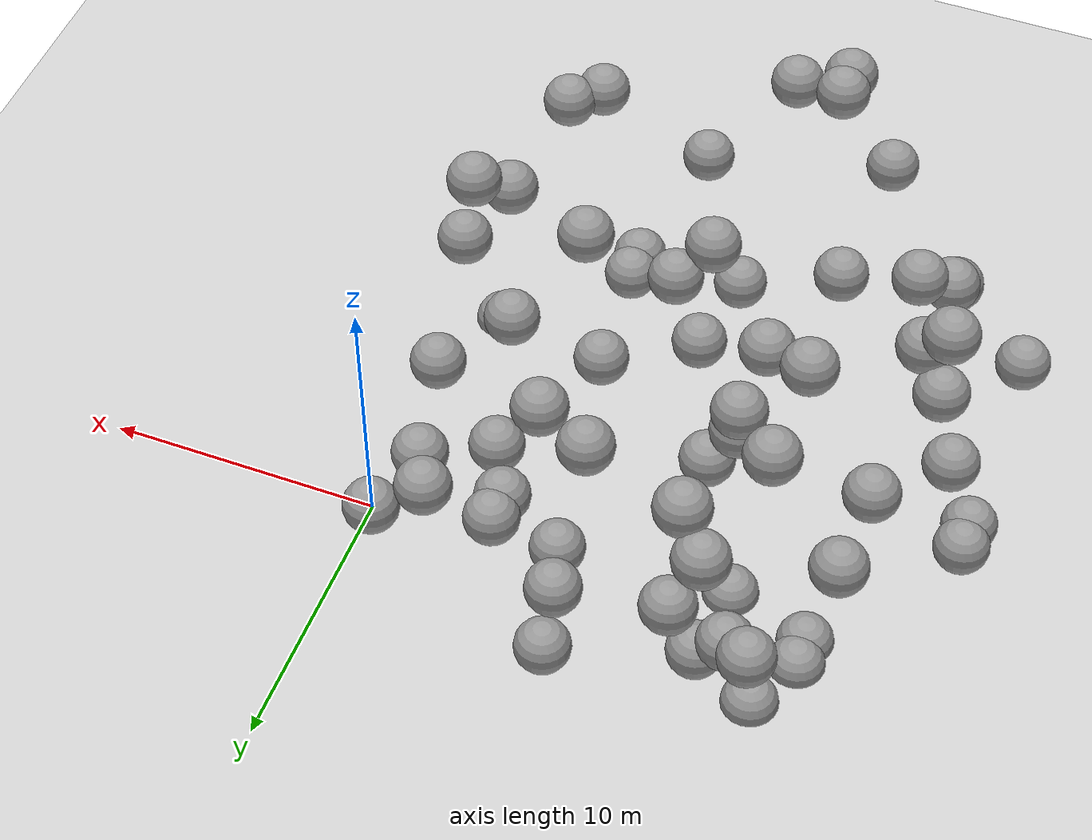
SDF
<sdf version="1.7">
 <world name="default">
  <model name="ground_plane">
   <static>1</static>
   <link name="link">
    <collision name="collision">
     <geometry><plane><normal>0 0 1</normal><size>100 100</size></plane></geometry>
     <surface>
      <contact><collide_bitmask>65535</collide_bitmask></contact>
      <friction><ode><mu>100</mu><mu2>50</mu2></ode></friction>
     </surface>
    </collision>
    <visual name="visual">
     <cast_shadows>0</cast_shadows>
     <geometry><plane><normal>0 0 1</normal><size>100 100</size></plane></geometry>
     <material>
      <script><uri>file://media/materials/scripts/gazebo.material</uri><name>Gazebo/Grey</name></script>
     </material>
    </visual>
   </link>
  </model>
  <model name="sphere_3">
   <static>1</static>
   <pose>-8 4 1 0 0 0</pose>
   <link name="link">
    <inertial>
     <mass>418.87902047863906</mass>
     <inertia>
      <ixx>167.55160819145564</ixx>
      <iyy>167.55160819145564</iyy>
      <izz>167.55160819145564</izz>
      <ixy>0</ixy>
      <ixz>0</ixz>
      <iyz>0</iyz>
     </inertia>
    </inertial>
    <collision name="collision"><geometry><sphere><radius>1.0</radius></sphere></geometry></collision>
    <visual name="visual">
     <geometry><sphere><radius>1.0</radius></sphere></geometry>
     <material>
      <script><uri>file://media/materials/scripts/gazebo.material</uri><name>Gazebo/Grey</name></script>
     </material>
    </visual>
   </link>
  </model>
  <model name="sphere_8">
   <static>1</static>
   <pose>-5 0 3 0 0 0</pose>
   <link name="link">
    <inertial>
     <mass>418.87902047863906</mass>
     <inertia>
      <ixx>167.55160819145564</ixx>
      <iyy>167.55160819145564</iyy>
      <izz>167.55160819145564</izz>
      <ixy>0</ixy>
      <ixz>0</ixz>
      <iyz>0</iyz>
     </inertia>
    </inertial>
    <collision name="collision"><geometry><sphere><radius>1.0</radius></sphere></geometry></collision>
    <visual name="visual">
     <geometry><sphere><radius>1.0</radius></sphere></geometry>
     <material>
      <script><uri>file://media/materials/scripts/gazebo.material</uri><name>Gazebo/Grey</name></script>
     </material>
    </visual>
   </link>
  </model>
  <model name="sphere_19">
   <static>1</static>
   <pose>-4 -2 3 0 0 0</pose>
   <link name="link">
    <inertial>
     <mass>418.87902047863906</mass>
     <inertia>
      <ixx>167.55160819145564</ixx>
      <iyy>167.55160819145564</iyy>
      <izz>167.55160819145564</izz>
      <ixy>0</ixy>
      <ixz>0</ixz>
      <iyz>0</iyz>
     </inertia>
    </inertial>
    <collision name="collision"><geometry><sphere><radius>1.0</radius></sphere></geometry></collision>
    <visual name="visual">
     <geometry><sphere><radius>1.0</radius></sphere></geometry>
     <material>
      <script><uri>file://media/materials/scripts/gazebo.material</uri><name>Gazebo/Grey</name></script>
     </material>
    </visual>
   </link>
  </model>
  <model name="sphere_20">
   <static>1</static>
   <pose>-8 -9 6 0 0 0</pose>
   <link name="link">
    <inertial>
     <mass>418.87902047863906</mass>
     <inertia>
      <ixx>167.55160819145564</ixx>
      <iyy>167.55160819145564</iyy>
      <izz>167.55160819145564</izz>
      <ixy>0</ixy>
      <ixz>0</ixz>
      <iyz>0</iyz>
     </inertia>
    </inertial>
    <collision name="collision"><geometry><sphere><radius>1.0</radius></sphere></geometry></collision>
    <visual name="visual">
     <geometry><sphere><radius>1.0</radius></sphere></geometry>
     <material>
      <script><uri>file://media/materials/scripts/gazebo.material</uri><name>Gazebo/Grey</name></script>
     </material>
    </visual>
   </link>
  </model>
  <model name="sphere_24">
   <static>1</static>
   <pose>-20 -5 1 0 0 0</pose>
   <link name="link">
    <inertial>
     <mass>418.87902047863906</mass>
     <inertia>
      <ixx>167.55160819145564</ixx>
      <iyy>167.55160819145564</iyy>
      <izz>167.55160819145564</izz>
      <ixy>0</ixy>
      <ixz>0</ixz>
      <iyz>0</iyz>
     </inertia>
    </inertial>
    <collision name="collision"><geometry><sphere><radius>1.0</radius></sphere></geometry></collision>
    <visual name="visual">
     <geometry><sphere><radius>1.0</radius></sphere></geometry>
     <material>
      <script><uri>file://media/materials/scripts/gazebo.material</uri><name>Gazebo/Grey</name></script>
     </material>
    </visual>
   </link>
  </model>
  <model name="sphere_26">
   <static>1</static>
   <pose>-2 -18 5 0 0 0</pose>
   <link name="link">
    <inertial>
     <mass>418.87902047863906</mass>
     <inertia>
      <ixx>167.55160819145564</ixx>
      <iyy>167.55160819145564</iyy>
      <izz>167.55160819145564</izz>
      <ixy>0</ixy>
      <ixz>0</ixz>
      <iyz>0</iyz>
     </inertia>
    </inertial>
    <collision name="collision"><geometry><sphere><radius>1.0</radius></sphere></geometry></collision>
    <visual name="visual">
     <geometry><sphere><radius>1.0</radius></sphere></geometry>
     <material>
      <script><uri>file://media/materials/scripts/gazebo.material</uri><name>Gazebo/Grey</name></script>
     </material>
    </visual>
   </link>
  </model>
  <model name="sphere_29">
   <static>1</static>
   <pose>-18 -8 5 0 0 0</pose>
   <link name="link">
    <inertial>
     <mass>418.87902047863906</mass>
     <inertia>
      <ixx>167.55160819145564</ixx>
      <iyy>167.55160819145564</iyy>
      <izz>167.55160819145564</izz>
      <ixy>0</ixy>
      <ixz>0</ixz>
      <iyz>0</iyz>
     </inertia>
    </inertial>
    <collision name="collision"><geometry><sphere><radius>1.0</radius></sphere></geometry></collision>
    <visual name="visual">
     <geometry><sphere><radius>1.0</radius></sphere></geometry>
     <material>
      <script><uri>file://media/materials/scripts/gazebo.material</uri><name>Gazebo/Grey</name></script>
     </material>
    </visual>
   </link>
  </model>
  <model name="sphere_35">
   <static>1</static>
   <pose>-11 -20 7 0 0 0</pose>
   <link name="link">
    <inertial>
     <mass>418.87902047863906</mass>
     <inertia>
      <ixx>167.55160819145564</ixx>
      <iyy>167.55160819145564</iyy>
      <izz>167.55160819145564</izz>
      <ixy>0</ixy>
      <ixz>0</ixz>
      <iyz>0</iyz>
     </inertia>
    </inertial>
    <collision name="collision"><geometry><sphere><radius>1.0</radius></sphere></geometry></collision>
    <visual name="visual">
     <geometry><sphere><radius>1.0</radius></sphere></geometry>
     <material>
      <script><uri>file://media/materials/scripts/gazebo.material</uri><name>Gazebo/Grey</name></script>
     </material>
    </visual>
   </link>
  </model>
  <model name="sphere_36">
   <static>1</static>
   <pose>-1 -11 6 0 0 0</pose>
   <link name="link">
    <inertial>
     <mass>418.87902047863906</mass>
     <inertia>
      <ixx>167.55160819145564</ixx>
      <iyy>167.55160819145564</iyy>
      <izz>167.55160819145564</izz>
      <ixy>0</ixy>
      <ixz>0</ixz>
      <iyz>0</iyz>
     </inertia>
    </inertial>
    <collision name="collision"><geometry><sphere><radius>1.0</radius></sphere></geometry></collision>
    <visual name="visual">
     <geometry><sphere><radius>1.0</radius></sphere></geometry>
     <material>
      <script><uri>file://media/materials/scripts/gazebo.material</uri><name>Gazebo/Grey</name></script>
     </material>
    </visual>
   </link>
  </model>
  <model name="sphere_38">
   <static>1</static>
   <pose>-8 0 7 0 0 0</pose>
   <link name="link">
    <inertial>
     <mass>418.87902047863906</mass>
     <inertia>
      <ixx>167.55160819145564</ixx>
      <iyy>167.55160819145564</iyy>
      <izz>167.55160819145564</izz>
      <ixy>0</ixy>
      <ixz>0</ixz>
      <iyz>0</iyz>
     </inertia>
    </inertial>
    <collision name="collision"><geometry><sphere><radius>1.0</radius></sphere></geometry></collision>
    <visual name="visual">
     <geometry><sphere><radius>1.0</radius></sphere></geometry>
     <material>
      <script><uri>file://media/materials/scripts/gazebo.material</uri><name>Gazebo/Grey</name></script>
     </material>
    </visual>
   </link>
  </model>
  <model name="sphere_45">
   <static>1</static>
   <pose>-14 -5 8 0 0 0</pose>
   <link name="link">
    <inertial>
     <mass>418.87902047863906</mass>
     <inertia>
      <ixx>167.55160819145564</ixx>
      <iyy>167.55160819145564</iyy>
      <izz>167.55160819145564</izz>
      <ixy>0</ixy>
      <ixz>0</ixz>
      <iyz>0</iyz>
     </inertia>
    </inertial>
    <collision name="collision"><geometry><sphere><radius>1.0</radius></sphere></geometry></collision>
    <visual name="visual">
     <geometry><sphere><radius>1.0</radius></sphere></geometry>
     <material>
      <script><uri>file://media/materials/scripts/gazebo.material</uri><name>Gazebo/Grey</name></script>
     </material>
    </visual>
   </link>
  </model>
  <model name="sphere_50">
   <static>1</static>
   <pose>-19 -6 4 0 0 0</pose>
   <link name="link">
    <inertial>
     <mass>418.87902047863906</mass>
     <inertia>
      <ixx>167.55160819145564</ixx>
      <iyy>167.55160819145564</iyy>
      <izz>167.55160819145564</izz>
      <ixy>0</ixy>
      <ixz>0</ixz>
      <iyz>0</iyz>
     </inertia>
    </inertial>
    <collision name="collision"><geometry><sphere><radius>1.0</radius></sphere></geometry></collision>
    <visual name="visual">
     <geometry><sphere><radius>1.0</radius></sphere></geometry>
     <material>
      <script><uri>file://media/materials/scripts/gazebo.material</uri><name>Gazebo/Grey</name></script>
     </material>
    </visual>
   </link>
  </model>
  <model name="sphere_56">
   <static>1</static>
   <pose>-16 -12 6 0 0 0</pose>
   <link name="link">
    <inertial>
     <mass>418.87902047863906</mass>
     <inertia>
      <ixx>167.55160819145564</ixx>
      <iyy>167.55160819145564</iyy>
      <izz>167.55160819145564</izz>
      <ixy>0</ixy>
      <ixz>0</ixz>
      <iyz>0</iyz>
     </inertia>
    </inertial>
    <collision name="collision"><geometry><sphere><radius>1.0</radius></sphere></geometry></collision>
    <visual name="visual">
     <geometry><sphere><radius>1.0</radius></sphere></geometry>
     <material>
      <script><uri>file://media/materials/scripts/gazebo.material</uri><name>Gazebo/Grey</name></script>
     </material>
    </visual>
   </link>
  </model>
  <model name="sphere_57">
   <static>1</static>
   <pose>-1 -10 0 0 0 0</pose>
   <link name="link">
    <inertial>
     <mass>418.87902047863906</mass>
     <inertia>
      <ixx>167.55160819145564</ixx>
      <iyy>167.55160819145564</iyy>
      <izz>167.55160819145564</izz>
      <ixy>0</ixy>
      <ixz>0</ixz>
      <iyz>0</iyz>
     </inertia>
    </inertial>
    <collision name="collision"><geometry><sphere><radius>1.0</radius></sphere></geometry></collision>
    <visual name="visual">
     <geometry><sphere><radius>1.0</radius></sphere></geometry>
     <material>
      <script><uri>file://media/materials/scripts/gazebo.material</uri><name>Gazebo/Grey</name></script>
     </material>
    </visual>
   </link>
  </model>
  <model name="sphere_58">
   <static>1</static>
   <pose>-13 3 2 0 0 0</pose>
   <link name="link">
    <inertial>
     <mass>418.87902047863906</mass>
     <inertia>
      <ixx>167.55160819145564</ixx>
      <iyy>167.55160819145564</iyy>
      <izz>167.55160819145564</izz>
      <ixy>0</ixy>
      <ixz>0</ixz>
      <iyz>0</iyz>
     </inertia>
    </inertial>
    <collision name="collision"><geometry><sphere><radius>1.0</radius></sphere></geometry></collision>
    <visual name="visual">
     <geometry><sphere><radius>1.0</radius></sphere></geometry>
     <material>
      <script><uri>file://media/materials/scripts/gazebo.material</uri><name>Gazebo/Grey</name></script>
     </material>
    </visual>
   </link>
  </model>
  <model name="sphere_60">
   <static>1</static>
   <pose>-14 3 3 0 0 0</pose>
   <link name="link">
    <inertial>
     <mass>418.87902047863906</mass>
     <inertia>
      <ixx>167.55160819145564</ixx>
      <iyy>167.55160819145564</iyy>
      <izz>167.55160819145564</izz>
      <ixy>0</ixy>
      <ixz>0</ixz>
      <iyz>0</iyz>
     </inertia>
    </inertial>
    <collision name="collision"><geometry><sphere><radius>1.0</radius></sphere></geometry></collision>
    <visual name="visual">
     <geometry><sphere><radius>1.0</radius></sphere></geometry>
     <material>
      <script><uri>file://media/materials/scripts/gazebo.material</uri><name>Gazebo/Grey</name></script>
     </material>
    </visual>
   </link>
  </model>
  <model name="sphere_61">
   <static>1</static>
   <pose>-13 -1 0 0 0 0</pose>
   <link name="link">
    <inertial>
     <mass>418.87902047863906</mass>
     <inertia>
      <ixx>167.55160819145564</ixx>
      <iyy>167.55160819145564</iyy>
      <izz>167.55160819145564</izz>
      <ixy>0</ixy>
      <ixz>0</ixz>
      <iyz>0</iyz>
     </inertia>
    </inertial>
    <collision name="collision"><geometry><sphere><radius>1.0</radius></sphere></geometry></collision>
    <visual name="visual">
     <geometry><sphere><radius>1.0</radius></sphere></geometry>
     <material>
      <script><uri>file://media/materials/scripts/gazebo.material</uri><name>Gazebo/Grey</name></script>
     </material>
    </visual>
   </link>
  </model>
  <model name="sphere_65">
   <static>1</static>
   <pose>-3 -6 5 0 0 0</pose>
   <link name="link">
    <inertial>
     <mass>418.87902047863906</mass>
     <inertia>
      <ixx>167.55160819145564</ixx>
      <iyy>167.55160819145564</iyy>
      <izz>167.55160819145564</izz>
      <ixy>0</ixy>
      <ixz>0</ixz>
      <iyz>0</iyz>
     </inertia>
    </inertial>
    <collision name="collision"><geometry><sphere><radius>1.0</radius></sphere></geometry></collision>
    <visual name="visual">
     <geometry><sphere><radius>1.0</radius></sphere></geometry>
     <material>
      <script><uri>file://media/materials/scripts/gazebo.material</uri><name>Gazebo/Grey</name></script>
     </material>
    </visual>
   </link>
  </model>
  <model name="sphere_71">
   <static>1</static>
   <pose>-9 -20 6 0 0 0</pose>
   <link name="link">
    <inertial>
     <mass>418.87902047863906</mass>
     <inertia>
      <ixx>167.55160819145564</ixx>
      <iyy>167.55160819145564</iyy>
      <izz>167.55160819145564</izz>
      <ixy>0</ixy>
      <ixz>0</ixz>
      <iyz>0</iyz>
     </inertia>
    </inertial>
    <collision name="collision"><geometry><sphere><radius>1.0</radius></sphere></geometry></collision>
    <visual name="visual">
     <geometry><sphere><radius>1.0</radius></sphere></geometry>
     <material>
      <script><uri>file://media/materials/scripts/gazebo.material</uri><name>Gazebo/Grey</name></script>
     </material>
    </visual>
   </link>
  </model>
  <model name="sphere_73">
   <static>1</static>
   <pose>-1 -17 5 0 0 0</pose>
   <link name="link">
    <inertial>
     <mass>418.87902047863906</mass>
     <inertia>
      <ixx>167.55160819145564</ixx>
      <iyy>167.55160819145564</iyy>
      <izz>167.55160819145564</izz>
      <ixy>0</ixy>
      <ixz>0</ixz>
      <iyz>0</iyz>
     </inertia>
    </inertial>
    <collision name="collision"><geometry><sphere><radius>1.0</radius></sphere></geometry></collision>
    <visual name="visual">
     <geometry><sphere><radius>1.0</radius></sphere></geometry>
     <material>
      <script><uri>file://media/materials/scripts/gazebo.material</uri><name>Gazebo/Grey</name></script>
     </material>
    </visual>
   </link>
  </model>
  <model name="sphere_76">
   <static>1</static>
   <pose>-8 3 3 0 0 0</pose>
   <link name="link">
    <inertial>
     <mass>418.87902047863906</mass>
     <inertia>
      <ixx>167.55160819145564</ixx>
      <iyy>167.55160819145564</iyy>
      <izz>167.55160819145564</izz>
      <ixy>0</ixy>
      <ixz>0</ixz>
      <iyz>0</iyz>
     </inertia>
    </inertial>
    <collision name="collision"><geometry><sphere><radius>1.0</radius></sphere></geometry></collision>
    <visual name="visual">
     <geometry><sphere><radius>1.0</radius></sphere></geometry>
     <material>
      <script><uri>file://media/materials/scripts/gazebo.material</uri><name>Gazebo/Grey</name></script>
     </material>
    </visual>
   </link>
  </model>
  <model name="sphere_84">
   <static>1</static>
   <pose>-12 2 8 0 0 0</pose>
   <link name="link">
    <inertial>
     <mass>418.87902047863906</mass>
     <inertia>
      <ixx>167.55160819145564</ixx>
      <iyy>167.55160819145564</iyy>
      <izz>167.55160819145564</izz>
      <ixy>0</ixy>
      <ixz>0</ixz>
      <iyz>0</iyz>
     </inertia>
    </inertial>
    <collision name="collision"><geometry><sphere><radius>1.0</radius></sphere></geometry></collision>
    <visual name="visual">
     <geometry><sphere><radius>1.0</radius></sphere></geometry>
     <material>
      <script><uri>file://media/materials/scripts/gazebo.material</uri><name>Gazebo/Grey</name></script>
     </material>
    </visual>
   </link>
  </model>
  <model name="sphere_85">
   <static>1</static>
   <pose>-5 1 3 0 0 0</pose>
   <link name="link">
    <inertial>
     <mass>418.87902047863906</mass>
     <inertia>
      <ixx>167.55160819145564</ixx>
      <iyy>167.55160819145564</iyy>
      <izz>167.55160819145564</izz>
      <ixy>0</ixy>
      <ixz>0</ixz>
      <iyz>0</iyz>
     </inertia>
    </inertial>
    <collision name="collision"><geometry><sphere><radius>1.0</radius></sphere></geometry></collision>
    <visual name="visual">
     <geometry><sphere><radius>1.0</radius></sphere></geometry>
     <material>
      <script><uri>file://media/materials/scripts/gazebo.material</uri><name>Gazebo/Grey</name></script>
     </material>
    </visual>
   </link>
  </model>
  <model name="sphere_93">
   <static>1</static>
   <pose>-13 3 7 0 0 0</pose>
   <link name="link">
    <inertial>
     <mass>418.87902047863906</mass>
     <inertia>
      <ixx>167.55160819145564</ixx>
      <iyy>167.55160819145564</iyy>
      <izz>167.55160819145564</izz>
      <ixy>0</ixy>
      <ixz>0</ixz>
      <iyz>0</iyz>
     </inertia>
    </inertial>
    <collision name="collision"><geometry><sphere><radius>1.0</radius></sphere></geometry></collision>
    <visual name="visual">
     <geometry><sphere><radius>1.0</radius></sphere></geometry>
     <material>
      <script><uri>file://media/materials/scripts/gazebo.material</uri><name>Gazebo/Grey</name></script>
     </material>
    </visual>
   </link>
  </model>
  <model name="sphere_94">
   <static>1</static>
   <pose>-1 2 3 0 0 0</pose>
   <link name="link">
    <inertial>
     <mass>418.87902047863906</mass>
     <inertia>
      <ixx>167.55160819145564</ixx>
      <iyy>167.55160819145564</iyy>
      <izz>167.55160819145564</izz>
      <ixy>0</ixy>
      <ixz>0</ixz>
      <iyz>0</iyz>
     </inertia>
    </inertial>
    <collision name="collision"><geometry><sphere><radius>1.0</radius></sphere></geometry></collision>
    <visual name="visual">
     <geometry><sphere><radius>1.0</radius></sphere></geometry>
     <material>
      <script><uri>file://media/materials/scripts/gazebo.material</uri><name>Gazebo/Grey</name></script>
     </material>
    </visual>
   </link>
  </model>
  <model name="sphere_95">
   <static>1</static>
   <pose>-16 0 0 0 0 0</pose>
   <link name="link">
    <inertial>
     <mass>418.87902047863906</mass>
     <inertia>
      <ixx>167.55160819145564</ixx>
      <iyy>167.55160819145564</iyy>
      <izz>167.55160819145564</izz>
      <ixy>0</ixy>
      <ixz>0</ixz>
      <iyz>0</iyz>
     </inertia>
    </inertial>
    <collision name="collision"><geometry><sphere><radius>1.0</radius></sphere></geometry></collision>
    <visual name="visual">
     <geometry><sphere><radius>1.0</radius></sphere></geometry>
     <material>
      <script><uri>file://media/materials/scripts/gazebo.material</uri><name>Gazebo/Grey</name></script>
     </material>
    </visual>
   </link>
  </model>
  <model name="sphere_100">
   <static>1</static>
   <pose>-2 0 4 0 0 0</pose>
   <link name="link">
    <inertial>
     <mass>418.87902047863906</mass>
     <inertia>
      <ixx>167.55160819145564</ixx>
      <iyy>167.55160819145564</iyy>
      <izz>167.55160819145564</izz>
      <ixy>0</ixy>
      <ixz>0</ixz>
      <iyz>0</iyz>
     </inertia>
    </inertial>
    <collision name="collision"><geometry><sphere><radius>1.0</radius></sphere></geometry></collision>
    <visual name="visual">
     <geometry><sphere><radius>1.0</radius></sphere></geometry>
     <material>
      <script><uri>file://media/materials/scripts/gazebo.material</uri><name>Gazebo/Grey</name></script>
     </material>
    </visual>
   </link>
  </model>
  <model name="sphere_104">
   <static>1</static>
   <pose>-13 -20 3 0 0 0</pose>
   <link name="link">
    <inertial>
     <mass>418.87902047863906</mass>
     <inertia>
      <ixx>167.55160819145564</ixx>
      <iyy>167.55160819145564</iyy>
      <izz>167.55160819145564</izz>
      <ixy>0</ixy>
      <ixz>0</ixz>
      <iyz>0</iyz>
     </inertia>
    </inertial>
    <collision name="collision"><geometry><sphere><radius>1.0</radius></sphere></geometry></collision>
    <visual name="visual">
     <geometry><sphere><radius>1.0</radius></sphere></geometry>
     <material>
      <script><uri>file://media/materials/scripts/gazebo.material</uri><name>Gazebo/Grey</name></script>
     </material>
    </visual>
   </link>
  </model>
  <model name="sphere_106">
   <static>1</static>
   <pose>-17 1 6 0 0 0</pose>
   <link name="link">
    <inertial>
     <mass>418.87902047863906</mass>
     <inertia>
      <ixx>167.55160819145564</ixx>
      <iyy>167.55160819145564</iyy>
      <izz>167.55160819145564</izz>
      <ixy>0</ixy>
      <ixz>0</ixz>
      <iyz>0</iyz>
     </inertia>
    </inertial>
    <collision name="collision"><geometry><sphere><radius>1.0</radius></sphere></geometry></collision>
    <visual name="visual">
     <geometry><sphere><radius>1.0</radius></sphere></geometry>
     <material>
      <script><uri>file://media/materials/scripts/gazebo.material</uri><name>Gazebo/Grey</name></script>
     </material>
    </visual>
   </link>
  </model>
  <model name="sphere_111">
   <static>1</static>
   <pose>-1 -4 4 0 0 0</pose>
   <link name="link">
    <inertial>
     <mass>418.87902047863906</mass>
     <inertia>
      <ixx>167.55160819145564</ixx>
      <iyy>167.55160819145564</iyy>
      <izz>167.55160819145564</izz>
      <ixy>0</ixy>
      <ixz>0</ixz>
      <iyz>0</iyz>
     </inertia>
    </inertial>
    <collision name="collision"><geometry><sphere><radius>1.0</radius></sphere></geometry></collision>
    <visual name="visual">
     <geometry><sphere><radius>1.0</radius></sphere></geometry>
     <material>
      <script><uri>file://media/materials/scripts/gazebo.material</uri><name>Gazebo/Grey</name></script>
     </material>
    </visual>
   </link>
  </model>
  <model name="sphere_112">
   <static>1</static>
   <pose>-5 -14 1 0 0 0</pose>
   <link name="link">
    <inertial>
     <mass>418.87902047863906</mass>
     <inertia>
      <ixx>167.55160819145564</ixx>
      <iyy>167.55160819145564</iyy>
      <izz>167.55160819145564</izz>
      <ixy>0</ixy>
      <ixz>0</ixz>
      <iyz>0</iyz>
     </inertia>
    </inertial>
    <collision name="collision"><geometry><sphere><radius>1.0</radius></sphere></geometry></collision>
    <visual name="visual">
     <geometry><sphere><radius>1.0</radius></sphere></geometry>
     <material>
      <script><uri>file://media/materials/scripts/gazebo.material</uri><name>Gazebo/Grey</name></script>
     </material>
    </visual>
   </link>
  </model>
  <model name="sphere_114">
   <static>1</static>
   <pose>-15 4 4 0 0 0</pose>
   <link name="link">
    <inertial>
     <mass>418.87902047863906</mass>
     <inertia>
      <ixx>167.55160819145564</ixx>
      <iyy>167.55160819145564</iyy>
      <izz>167.55160819145564</izz>
      <ixy>0</ixy>
      <ixz>0</ixz>
      <iyz>0</iyz>
     </inertia>
    </inertial>
    <collision name="collision"><geometry><sphere><radius>1.0</radius></sphere></geometry></collision>
    <visual name="visual">
     <geometry><sphere><radius>1.0</radius></sphere></geometry>
     <material>
      <script><uri>file://media/materials/scripts/gazebo.material</uri><name>Gazebo/Grey</name></script>
     </material>
    </visual>
   </link>
  </model>
  <model name="sphere_118">
   <static>1</static>
   <pose>-6 -19 2 0 0 0</pose>
   <link name="link">
    <inertial>
     <mass>418.87902047863906</mass>
     <inertia>
      <ixx>167.55160819145564</ixx>
      <iyy>167.55160819145564</iyy>
      <izz>167.55160819145564</izz>
      <ixy>0</ixy>
      <ixz>0</ixz>
      <iyz>0</iyz>
     </inertia>
    </inertial>
    <collision name="collision"><geometry><sphere><radius>1.0</radius></sphere></geometry></collision>
    <visual name="visual">
     <geometry><sphere><radius>1.0</radius></sphere></geometry>
     <material>
      <script><uri>file://media/materials/scripts/gazebo.material</uri><name>Gazebo/Grey</name></script>
     </material>
    </visual>
   </link>
  </model>
  <model name="sphere_128">
   <static>1</static>
   <pose>-15 3 0 0 0 0</pose>
   <link name="link">
    <inertial>
     <mass>418.87902047863906</mass>
     <inertia>
      <ixx>167.55160819145564</ixx>
      <iyy>167.55160819145564</iyy>
      <izz>167.55160819145564</izz>
      <ixy>0</ixy>
      <ixz>0</ixz>
      <iyz>0</iyz>
     </inertia>
    </inertial>
    <collision name="collision"><geometry><sphere><radius>1.0</radius></sphere></geometry></collision>
    <visual name="visual">
     <geometry><sphere><radius>1.0</radius></sphere></geometry>
     <material>
      <script><uri>file://media/materials/scripts/gazebo.material</uri><name>Gazebo/Grey</name></script>
     </material>
    </visual>
   </link>
  </model>
  <model name="sphere_132">
   <static>1</static>
   <pose>-17 -13 5 0 0 0</pose>
   <link name="link">
    <inertial>
     <mass>418.87902047863906</mass>
     <inertia>
      <ixx>167.55160819145564</ixx>
      <iyy>167.55160819145564</iyy>
      <izz>167.55160819145564</izz>
      <ixy>0</ixy>
      <ixz>0</ixz>
      <iyz>0</iyz>
     </inertia>
    </inertial>
    <collision name="collision"><geometry><sphere><radius>1.0</radius></sphere></geometry></collision>
    <visual name="visual">
     <geometry><sphere><radius>1.0</radius></sphere></geometry>
     <material>
      <script><uri>file://media/materials/scripts/gazebo.material</uri><name>Gazebo/Grey</name></script>
     </material>
    </visual>
   </link>
  </model>
  <model name="sphere_134">
   <static>1</static>
   <pose>-7 0 1 0 0 0</pose>
   <link name="link">
    <inertial>
     <mass>418.87902047863906</mass>
     <inertia>
      <ixx>167.55160819145564</ixx>
      <iyy>167.55160819145564</iyy>
      <izz>167.55160819145564</izz>
      <ixy>0</ixy>
      <ixz>0</ixz>
      <iyz>0</iyz>
     </inertia>
    </inertial>
    <collision name="collision"><geometry><sphere><radius>1.0</radius></sphere></geometry></collision>
    <visual name="visual">
     <geometry><sphere><radius>1.0</radius></sphere></geometry>
     <material>
      <script><uri>file://media/materials/scripts/gazebo.material</uri><name>Gazebo/Grey</name></script>
     </material>
    </visual>
   </link>
  </model>
  <model name="sphere_136">
   <static>1</static>
   <pose>-20 -13 2 0 0 0</pose>
   <link name="link">
    <inertial>
     <mass>418.87902047863906</mass>
     <inertia>
      <ixx>167.55160819145564</ixx>
      <iyy>167.55160819145564</iyy>
      <izz>167.55160819145564</izz>
      <ixy>0</ixy>
      <ixz>0</ixz>
      <iyz>0</iyz>
     </inertia>
    </inertial>
    <collision name="collision"><geometry><sphere><radius>1.0</radius></sphere></geometry></collision>
    <visual name="visual">
     <geometry><sphere><radius>1.0</radius></sphere></geometry>
     <material>
      <script><uri>file://media/materials/scripts/gazebo.material</uri><name>Gazebo/Grey</name></script>
     </material>
    </visual>
   </link>
  </model>
  <model name="sphere_139">
   <static>1</static>
   <pose>-12 -4 6 0 0 0</pose>
   <link name="link">
    <inertial>
     <mass>418.87902047863906</mass>
     <inertia>
      <ixx>167.55160819145564</ixx>
      <iyy>167.55160819145564</iyy>
      <izz>167.55160819145564</izz>
      <ixy>0</ixy>
      <ixz>0</ixz>
      <iyz>0</iyz>
     </inertia>
    </inertial>
    <collision name="collision"><geometry><sphere><radius>1.0</radius></sphere></geometry></collision>
    <visual name="visual">
     <geometry><sphere><radius>1.0</radius></sphere></geometry>
     <material>
      <script><uri>file://media/materials/scripts/gazebo.material</uri><name>Gazebo/Grey</name></script>
     </material>
    </visual>
   </link>
  </model>
  <model name="sphere_141">
   <static>1</static>
   <pose>-11 -19 7 0 0 0</pose>
   <link name="link">
    <inertial>
     <mass>418.87902047863906</mass>
     <inertia>
      <ixx>167.55160819145564</ixx>
      <iyy>167.55160819145564</iyy>
      <izz>167.55160819145564</izz>
      <ixy>0</ixy>
      <ixz>0</ixz>
      <iyz>0</iyz>
     </inertia>
    </inertial>
    <collision name="collision"><geometry><sphere><radius>1.0</radius></sphere></geometry></collision>
    <visual name="visual">
     <geometry><sphere><radius>1.0</radius></sphere></geometry>
     <material>
      <script><uri>file://media/materials/scripts/gazebo.material</uri><name>Gazebo/Grey</name></script>
     </material>
    </visual>
   </link>
  </model>
  <model name="sphere_142">
   <static>1</static>
   <pose>-17 -14 4 0 0 0</pose>
   <link name="link">
    <inertial>
     <mass>418.87902047863906</mass>
     <inertia>
      <ixx>167.55160819145564</ixx>
      <iyy>167.55160819145564</iyy>
      <izz>167.55160819145564</izz>
      <ixy>0</ixy>
      <ixz>0</ixz>
      <iyz>0</iyz>
     </inertia>
    </inertial>
    <collision name="collision"><geometry><sphere><radius>1.0</radius></sphere></geometry></collision>
    <visual name="visual">
     <geometry><sphere><radius>1.0</radius></sphere></geometry>
     <material>
      <script><uri>file://media/materials/scripts/gazebo.material</uri><name>Gazebo/Grey</name></script>
     </material>
    </visual>
   </link>
  </model>
  <model name="sphere_143">
   <static>1</static>
   <pose>-3 2 5 0 0 0</pose>
   <link name="link">
    <inertial>
     <mass>418.87902047863906</mass>
     <inertia>
      <ixx>167.55160819145564</ixx>
      <iyy>167.55160819145564</iyy>
      <izz>167.55160819145564</izz>
      <ixy>0</ixy>
      <ixz>0</ixz>
      <iyz>0</iyz>
     </inertia>
    </inertial>
    <collision name="collision"><geometry><sphere><radius>1.0</radius></sphere></geometry></collision>
    <visual name="visual">
     <geometry><sphere><radius>1.0</radius></sphere></geometry>
     <material>
      <script><uri>file://media/materials/scripts/gazebo.material</uri><name>Gazebo/Grey</name></script>
     </material>
    </visual>
   </link>
  </model>
  <model name="sphere_164">
   <static>1</static>
   <pose>-9 -9 3 0 0 0</pose>
   <link name="link">
    <inertial>
     <mass>418.87902047863906</mass>
     <inertia>
      <ixx>167.55160819145564</ixx>
      <iyy>167.55160819145564</iyy>
      <izz>167.55160819145564</izz>
      <ixy>0</ixy>
      <ixz>0</ixz>
      <iyz>0</iyz>
     </inertia>
    </inertial>
    <collision name="collision"><geometry><sphere><radius>1.0</radius></sphere></geometry></collision>
    <visual name="visual">
     <geometry><sphere><radius>1.0</radius></sphere></geometry>
     <material>
      <script><uri>file://media/materials/scripts/gazebo.material</uri><name>Gazebo/Grey</name></script>
     </material>
    </visual>
   </link>
  </model>
  <model name="sphere_182">
   <static>1</static>
   <pose>-16 1 0 0 0 0</pose>
   <link name="link">
    <inertial>
     <mass>418.87902047863906</mass>
     <inertia>
      <ixx>167.55160819145564</ixx>
      <iyy>167.55160819145564</iyy>
      <izz>167.55160819145564</izz>
      <ixy>0</ixy>
      <ixz>0</ixz>
      <iyz>0</iyz>
     </inertia>
    </inertial>
    <collision name="collision"><geometry><sphere><radius>1.0</radius></sphere></geometry></collision>
    <visual name="visual">
     <geometry><sphere><radius>1.0</radius></sphere></geometry>
     <material>
      <script><uri>file://media/materials/scripts/gazebo.material</uri><name>Gazebo/Grey</name></script>
     </material>
    </visual>
   </link>
  </model>
  <model name="sphere_184">
   <static>1</static>
   <pose>0 -9 5 0 0 0</pose>
   <link name="link">
    <inertial>
     <mass>418.87902047863906</mass>
     <inertia>
      <ixx>167.55160819145564</ixx>
      <iyy>167.55160819145564</iyy>
      <izz>167.55160819145564</izz>
      <ixy>0</ixy>
      <ixz>0</ixz>
      <iyz>0</iyz>
     </inertia>
    </inertial>
    <collision name="collision"><geometry><sphere><radius>1.0</radius></sphere></geometry></collision>
    <visual name="visual">
     <geometry><sphere><radius>1.0</radius></sphere></geometry>
     <material>
      <script><uri>file://media/materials/scripts/gazebo.material</uri><name>Gazebo/Grey</name></script>
     </material>
    </visual>
   </link>
  </model>
  <model name="sphere_189">
   <static>1</static>
   <pose>-14 -1 8 0 0 0</pose>
   <link name="link">
    <inertial>
     <mass>418.87902047863906</mass>
     <inertia>
      <ixx>167.55160819145564</ixx>
      <iyy>167.55160819145564</iyy>
      <izz>167.55160819145564</izz>
      <ixy>0</ixy>
      <ixz>0</ixz>
      <iyz>0</iyz>
     </inertia>
    </inertial>
    <collision name="collision"><geometry><sphere><radius>1.0</radius></sphere></geometry></collision>
    <visual name="visual">
     <geometry><sphere><radius>1.0</radius></sphere></geometry>
     <material>
      <script><uri>file://media/materials/scripts/gazebo.material</uri><name>Gazebo/Grey</name></script>
     </material>
    </visual>
   </link>
  </model>
  <model name="sphere_191">
   <static>1</static>
   <pose>-5 -8 8 0 0 0</pose>
   <link name="link">
    <inertial>
     <mass>418.87902047863906</mass>
     <inertia>
      <ixx>167.55160819145564</ixx>
      <iyy>167.55160819145564</iyy>
      <izz>167.55160819145564</izz>
      <ixy>0</ixy>
      <ixz>0</ixz>
      <iyz>0</iyz>
     </inertia>
    </inertial>
    <collision name="collision"><geometry><sphere><radius>1.0</radius></sphere></geometry></collision>
    <visual name="visual">
     <geometry><sphere><radius>1.0</radius></sphere></geometry>
     <material>
      <script><uri>file://media/materials/scripts/gazebo.material</uri><name>Gazebo/Grey</name></script>
     </material>
    </visual>
   </link>
  </model>
  <model name="sphere_197">
   <static>1</static>
   <pose>-12 3 4 0 0 0</pose>
   <link name="link">
    <inertial>
     <mass>418.87902047863906</mass>
     <inertia>
      <ixx>167.55160819145564</ixx>
      <iyy>167.55160819145564</iyy>
      <izz>167.55160819145564</izz>
      <ixy>0</ixy>
      <ixz>0</ixz>
      <iyz>0</iyz>
     </inertia>
    </inertial>
    <collision name="collision"><geometry><sphere><radius>1.0</radius></sphere></geometry></collision>
    <visual name="visual">
     <geometry><sphere><radius>1.0</radius></sphere></geometry>
     <material>
      <script><uri>file://media/materials/scripts/gazebo.material</uri><name>Gazebo/Grey</name></script>
     </material>
    </visual>
   </link>
  </model>
  <model name="sphere_199">
   <static>1</static>
   <pose>-13 -13 4 0 0 0</pose>
   <link name="link">
    <inertial>
     <mass>418.87902047863906</mass>
     <inertia>
      <ixx>167.55160819145564</ixx>
      <iyy>167.55160819145564</iyy>
      <izz>167.55160819145564</izz>
      <ixy>0</ixy>
      <ixz>0</ixz>
      <iyz>0</iyz>
     </inertia>
    </inertial>
    <collision name="collision"><geometry><sphere><radius>1.0</radius></sphere></geometry></collision>
    <visual name="visual">
     <geometry><sphere><radius>1.0</radius></sphere></geometry>
     <material>
      <script><uri>file://media/materials/scripts/gazebo.material</uri><name>Gazebo/Grey</name></script>
     </material>
    </visual>
   </link>
  </model>
  <model name="sphere_201">
   <static>1</static>
   <pose>-5 -13 1 0 0 0</pose>
   <link name="link">
    <inertial>
     <mass>418.87902047863906</mass>
     <inertia>
      <ixx>167.55160819145564</ixx>
      <iyy>167.55160819145564</iyy>
      <izz>167.55160819145564</izz>
      <ixy>0</ixy>
      <ixz>0</ixz>
      <iyz>0</iyz>
     </inertia>
    </inertial>
    <collision name="collision"><geometry><sphere><radius>1.0</radius></sphere></geometry></collision>
    <visual name="visual">
     <geometry><sphere><radius>1.0</radius></sphere></geometry>
     <material>
      <script><uri>file://media/materials/scripts/gazebo.material</uri><name>Gazebo/Grey</name></script>
     </material>
    </visual>
   </link>
  </model>
  <model name="sphere_204">
   <static>1</static>
   <pose>0 -10 7 0 0 0</pose>
   <link name="link">
    <inertial>
     <mass>418.87902047863906</mass>
     <inertia>
      <ixx>167.55160819145564</ixx>
      <iyy>167.55160819145564</iyy>
      <izz>167.55160819145564</izz>
      <ixy>0</ixy>
      <ixz>0</ixz>
      <iyz>0</iyz>
     </inertia>
    </inertial>
    <collision name="collision"><geometry><sphere><radius>1.0</radius></sphere></geometry></collision>
    <visual name="visual">
     <geometry><sphere><radius>1.0</radius></sphere></geometry>
     <material>
      <script><uri>file://media/materials/scripts/gazebo.material</uri><name>Gazebo/Grey</name></script>
     </material>
    </visual>
   </link>
  </model>
  <model name="sphere_207">
   <static>1</static>
   <pose>-4 -2 3 0 0 0</pose>
   <link name="link">
    <inertial>
     <mass>418.87902047863906</mass>
     <inertia>
      <ixx>167.55160819145564</ixx>
      <iyy>167.55160819145564</iyy>
      <izz>167.55160819145564</izz>
      <ixy>0</ixy>
      <ixz>0</ixz>
      <iyz>0</iyz>
     </inertia>
    </inertial>
    <collision name="collision"><geometry><sphere><radius>1.0</radius></sphere></geometry></collision>
    <visual name="visual">
     <geometry><sphere><radius>1.0</radius></sphere></geometry>
     <material>
      <script><uri>file://media/materials/scripts/gazebo.material</uri><name>Gazebo/Grey</name></script>
     </material>
    </visual>
   </link>
  </model>
  <model name="sphere_210">
   <static>1</static>
   <pose>-12 -7 6 0 0 0</pose>
   <link name="link">
    <inertial>
     <mass>418.87902047863906</mass>
     <inertia>
      <ixx>167.55160819145564</ixx>
      <iyy>167.55160819145564</iyy>
      <izz>167.55160819145564</izz>
      <ixy>0</ixy>
      <ixz>0</ixz>
      <iyz>0</iyz>
     </inertia>
    </inertial>
    <collision name="collision"><geometry><sphere><radius>1.0</radius></sphere></geometry></collision>
    <visual name="visual">
     <geometry><sphere><radius>1.0</radius></sphere></geometry>
     <material>
      <script><uri>file://media/materials/scripts/gazebo.material</uri><name>Gazebo/Grey</name></script>
     </material>
    </visual>
   </link>
  </model>
  <model name="sphere_214">
   <static>1</static>
   <pose>-6 -1 7 0 0 0</pose>
   <link name="link">
    <inertial>
     <mass>418.87902047863906</mass>
     <inertia>
      <ixx>167.55160819145564</ixx>
      <iyy>167.55160819145564</iyy>
      <izz>167.55160819145564</izz>
      <ixy>0</ixy>
      <ixz>0</ixz>
      <iyz>0</iyz>
     </inertia>
    </inertial>
    <collision name="collision"><geometry><sphere><radius>1.0</radius></sphere></geometry></collision>
    <visual name="visual">
     <geometry><sphere><radius>1.0</radius></sphere></geometry>
     <material>
      <script><uri>file://media/materials/scripts/gazebo.material</uri><name>Gazebo/Grey</name></script>
     </material>
    </visual>
   </link>
  </model>
  <model name="sphere_218">
   <static>1</static>
   <pose>-6 -7 3 0 0 0</pose>
   <link name="link">
    <inertial>
     <mass>418.87902047863906</mass>
     <inertia>
      <ixx>167.55160819145564</ixx>
      <iyy>167.55160819145564</iyy>
      <izz>167.55160819145564</izz>
      <ixy>0</ixy>
      <ixz>0</ixz>
      <iyz>0</iyz>
     </inertia>
    </inertial>
    <collision name="collision"><geometry><sphere><radius>1.0</radius></sphere></geometry></collision>
    <visual name="visual">
     <geometry><sphere><radius>1.0</radius></sphere></geometry>
     <material>
      <script><uri>file://media/materials/scripts/gazebo.material</uri><name>Gazebo/Grey</name></script>
     </material>
    </visual>
   </link>
  </model>
  <model name="sphere_219">
   <static>1</static>
   <pose>-9 -14 1 0 0 0</pose>
   <link name="link">
    <inertial>
     <mass>418.87902047863906</mass>
     <inertia>
      <ixx>167.55160819145564</ixx>
      <iyy>167.55160819145564</iyy>
      <izz>167.55160819145564</izz>
      <ixy>0</ixy>
      <ixz>0</ixz>
      <iyz>0</iyz>
     </inertia>
    </inertial>
    <collision name="collision"><geometry><sphere><radius>1.0</radius></sphere></geometry></collision>
    <visual name="visual">
     <geometry><sphere><radius>1.0</radius></sphere></geometry>
     <material>
      <script><uri>file://media/materials/scripts/gazebo.material</uri><name>Gazebo/Grey</name></script>
     </material>
    </visual>
   </link>
  </model>
  <model name="sphere_221">
   <static>1</static>
   <pose>-17 -9 6 0 0 0</pose>
   <link name="link">
    <inertial>
     <mass>418.87902047863906</mass>
     <inertia>
      <ixx>167.55160819145564</ixx>
      <iyy>167.55160819145564</iyy>
      <izz>167.55160819145564</izz>
      <ixy>0</ixy>
      <ixz>0</ixz>
      <iyz>0</iyz>
     </inertia>
    </inertial>
    <collision name="collision"><geometry><sphere><radius>1.0</radius></sphere></geometry></collision>
    <visual name="visual">
     <geometry><sphere><radius>1.0</radius></sphere></geometry>
     <material>
      <script><uri>file://media/materials/scripts/gazebo.material</uri><name>Gazebo/Grey</name></script>
     </material>
    </visual>
   </link>
  </model>
  <model name="sphere_223">
   <static>1</static>
   <pose>-18 -8 8 0 0 0</pose>
   <link name="link">
    <inertial>
     <mass>418.87902047863906</mass>
     <inertia>
      <ixx>167.55160819145564</ixx>
      <iyy>167.55160819145564</iyy>
      <izz>167.55160819145564</izz>
      <ixy>0</ixy>
      <ixz>0</ixz>
      <iyz>0</iyz>
     </inertia>
    </inertial>
    <collision name="collision"><geometry><sphere><radius>1.0</radius></sphere></geometry></collision>
    <visual name="visual">
     <geometry><sphere><radius>1.0</radius></sphere></geometry>
     <material>
      <script><uri>file://media/materials/scripts/gazebo.material</uri><name>Gazebo/Grey</name></script>
     </material>
    </visual>
   </link>
  </model>
  <model name="sphere_233">
   <static>1</static>
   <pose>-12 -4 5 0 0 0</pose>
   <link name="link">
    <inertial>
     <mass>418.87902047863906</mass>
     <inertia>
      <ixx>167.55160819145564</ixx>
      <iyy>167.55160819145564</iyy>
      <izz>167.55160819145564</izz>
      <ixy>0</ixy>
      <ixz>0</ixz>
      <iyz>0</iyz>
     </inertia>
    </inertial>
    <collision name="collision"><geometry><sphere><radius>1.0</radius></sphere></geometry></collision>
    <visual name="visual">
     <geometry><sphere><radius>1.0</radius></sphere></geometry>
     <material>
      <script><uri>file://media/materials/scripts/gazebo.material</uri><name>Gazebo/Grey</name></script>
     </material>
    </visual>
   </link>
  </model>
  <model name="sphere_235">
   <static>1</static>
   <pose>-11 -4 3 0 0 0</pose>
   <link name="link">
    <inertial>
     <mass>418.87902047863906</mass>
     <inertia>
      <ixx>167.55160819145564</ixx>
      <iyy>167.55160819145564</iyy>
      <izz>167.55160819145564</izz>
      <ixy>0</ixy>
      <ixz>0</ixz>
      <iyz>0</iyz>
     </inertia>
    </inertial>
    <collision name="collision"><geometry><sphere><radius>1.0</radius></sphere></geometry></collision>
    <visual name="visual">
     <geometry><sphere><radius>1.0</radius></sphere></geometry>
     <material>
      <script><uri>file://media/materials/scripts/gazebo.material</uri><name>Gazebo/Grey</name></script>
     </material>
    </visual>
   </link>
  </model>
  <model name="sphere_238">
   <static>1</static>
   <pose>-20 -6 1 0 0 0</pose>
   <link name="link">
    <inertial>
     <mass>418.87902047863906</mass>
     <inertia>
      <ixx>167.55160819145564</ixx>
      <iyy>167.55160819145564</iyy>
      <izz>167.55160819145564</izz>
      <ixy>0</ixy>
      <ixz>0</ixz>
      <iyz>0</iyz>
     </inertia>
    </inertial>
    <collision name="collision"><geometry><sphere><radius>1.0</radius></sphere></geometry></collision>
    <visual name="visual">
     <geometry><sphere><radius>1.0</radius></sphere></geometry>
     <material>
      <script><uri>file://media/materials/scripts/gazebo.material</uri><name>Gazebo/Grey</name></script>
     </material>
    </visual>
   </link>
  </model>
  <model name="sphere_243">
   <static>1</static>
   <pose>-9 -10 7 0 0 0</pose>
   <link name="link">
    <inertial>
     <mass>418.87902047863906</mass>
     <inertia>
      <ixx>167.55160819145564</ixx>
      <iyy>167.55160819145564</iyy>
      <izz>167.55160819145564</izz>
      <ixy>0</ixy>
      <ixz>0</ixz>
      <iyz>0</iyz>
     </inertia>
    </inertial>
    <collision name="collision"><geometry><sphere><radius>1.0</radius></sphere></geometry></collision>
    <visual name="visual">
     <geometry><sphere><radius>1.0</radius></sphere></geometry>
     <material>
      <script><uri>file://media/materials/scripts/gazebo.material</uri><name>Gazebo/Grey</name></script>
     </material>
    </visual>
   </link>
  </model>
  <model name="sphere_245">
   <static>1</static>
   <pose>-17 -3 5 0 0 0</pose>
   <link name="link">
    <inertial>
     <mass>418.87902047863906</mass>
     <inertia>
      <ixx>167.55160819145564</ixx>
      <iyy>167.55160819145564</iyy>
      <izz>167.55160819145564</izz>
      <ixy>0</ixy>
      <ixz>0</ixz>
      <iyz>0</iyz>
     </inertia>
    </inertial>
    <collision name="collision"><geometry><sphere><radius>1.0</radius></sphere></geometry></collision>
    <visual name="visual">
     <geometry><sphere><radius>1.0</radius></sphere></geometry>
     <material>
      <script><uri>file://media/materials/scripts/gazebo.material</uri><name>Gazebo/Grey</name></script>
     </material>
    </visual>
   </link>
  </model>
 </world>
</sdf>
